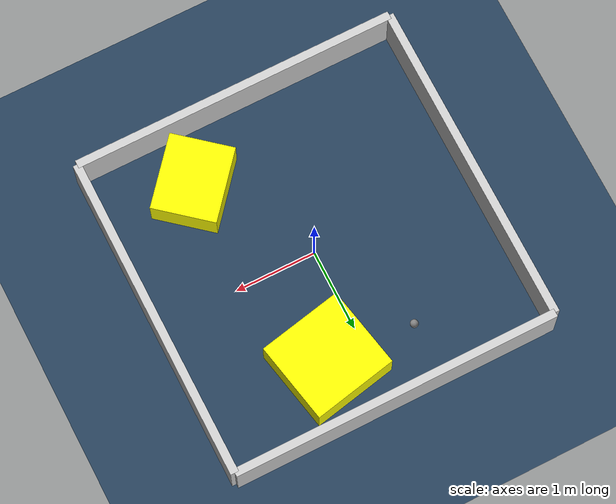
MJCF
<?xml version="1.0" ?>
<mujoco model="generated_environment">
  <option timestep="0.01" integrator="RK4" cone="elliptic"/>
  <default>
    <geom density="1"/>
  </default>
  <asset>
    <texture builtin="gradient" height="3072" rgb1="0.3 0.5 0.7" rgb2="0 0 0" type="skybox" width="512"/>
    <texture builtin="checker" height="300" mark="edge" markrgb="0.8 0.8 0.8" name="groundplane" rgb1="0.2 0.3 0.4" rgb2="0.1 0.2 0.3" type="2d" width="300"/>
    <material name="groundplane" reflectance="0.2" texrepeat="5 5" texture="groundplane" texuniform="true"/>
    <material name="robot" rgba="0.0 1.0 0.0 1"/>
  </asset>
  <worldbody>
    <light dir="0 0 -1" directional="true" pos="0 0 1.5"/>
    <geom condim="4" friction="1.0 0.005 0.001" material="groundplane" name="floor" size="0 0 0.05" type="plane"/>
    <body name="walls">
      <geom name="wall_1" condim="4" pos="-2.0 0.0 0.3" rgba="0.800000011920929 0.800000011920929 0.800000011920929 1.0" size="0.05 2.0 0.3" type="box"/>
      <geom name="wall_2" condim="4" pos="2.0 0.0 0.3" rgba="0.800000011920929 0.800000011920929 0.800000011920929 1.0" size="0.05 2.0 0.3" type="box"/>
      <geom name="wall_3" condim="4" pos="0.0 -2.0 0.3" rgba="0.800000011920929 0.800000011920929 0.800000011920929 1.0" size="2.0 0.05 0.3" type="box"/>
      <geom name="wall_4" condim="4" pos="0.0 2.0 0.3" rgba="0.800000011920929 0.800000011920929 0.800000011920929 1.0" size="2.0 0.05 0.3" type="box"/>
    </body>
    <body name="robot">
      <joint name="joint_x" type="slide" pos="0 0 0" axis="1 0 0"/>
      <joint name="joint_y" type="slide" pos="0 0 0" axis="0 1 0"/>
      <geom name="robot" type="sphere" pos="-0.6006655212374086 1.306244947545124 0.2" size="0.05" mass="5." friction="1.0 0.005 0.0001" condim="4"/>
      <site name="sensor_ball"/>
    </body>
    <body name="obstacle_1_movable">
      <geom name="obstacle_1_movable" condim="4" pos="0.46096434886835747 1.2310088118132345 0.2" euler="0 0 11.39208586011479" friction="1.0 0.005 0.001" rgba="1 1 0 1" size="0.5227205987346728 0.5053696064014068 0.2" type="box" mass="0.1"/>
      <joint type="free"/>
    </body>
    <body name="obstacle_2_movable">
      <geom name="obstacle_2_movable" condim="4" pos="0.8758923341127969 -1.3240905944790662 0.2" euler="0 0 319.8060630129544" friction="1.0 0.005 0.001" rgba="1 1 0 1" size="0.39105936591985924 0.46439839104340874 0.2" type="box" mass="0.1"/>
      <joint type="free"/>
    </body>
  </worldbody>
  <actuator>
    <motor name="actuator_x" joint="joint_x" gear="1" ctrlrange="-1 1"/>
    <motor name="actuator_y" joint="joint_y" gear="1" ctrlrange="-1 1"/>
  </actuator>
</mujoco>
